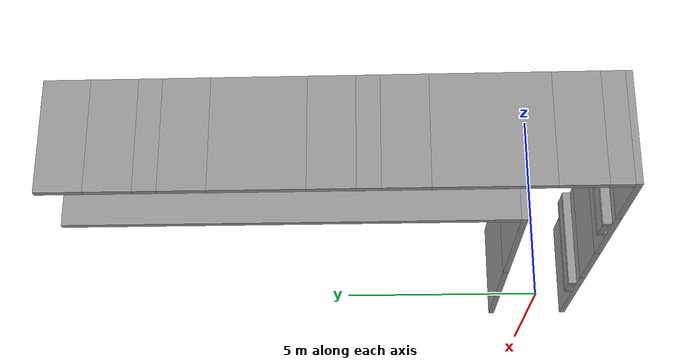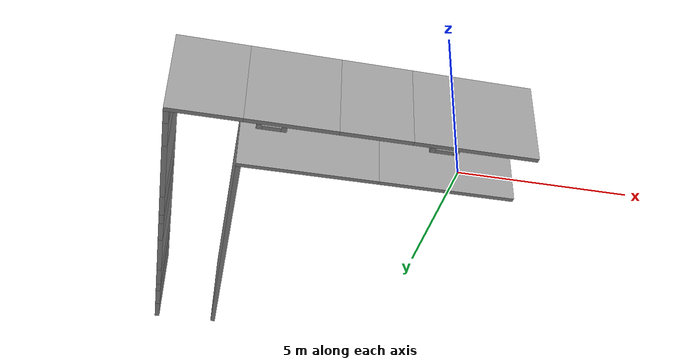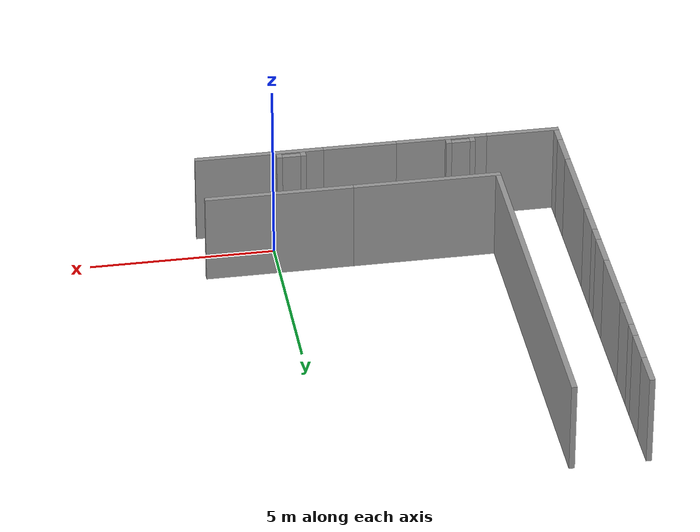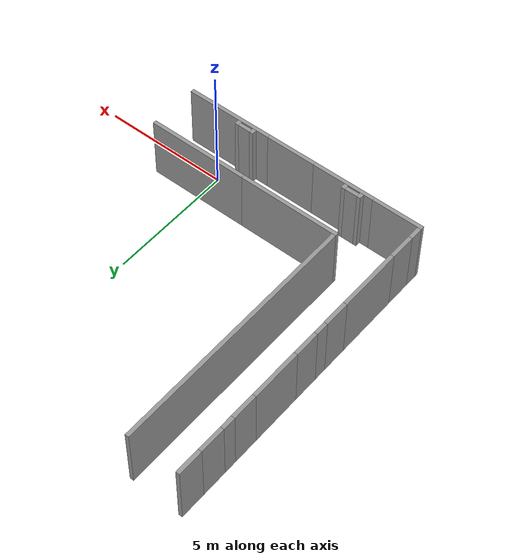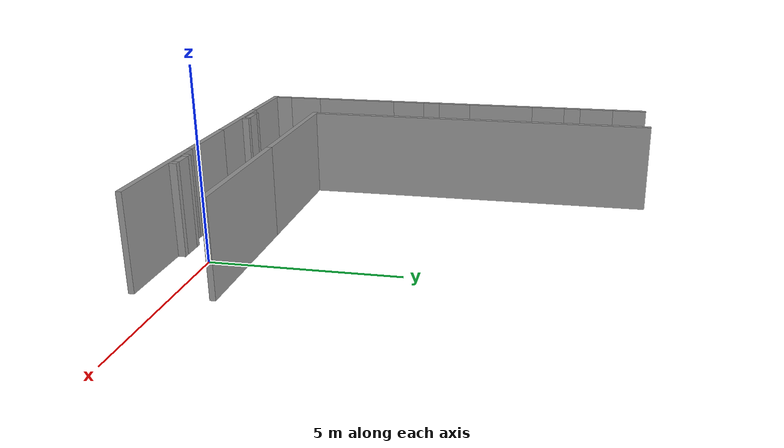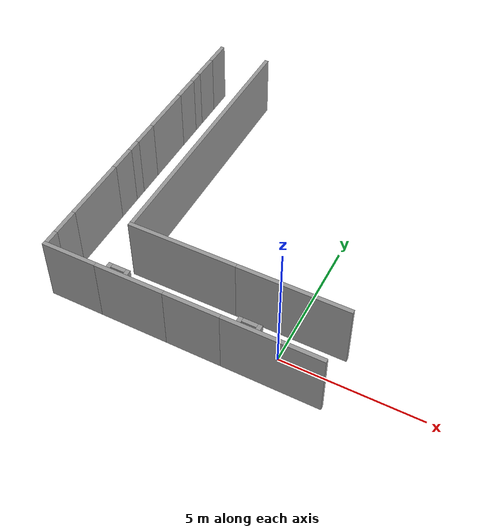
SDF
<?xml version='1.0'?>
<sdf version='1.6'>
  <model name='turtlebot_model_10'>
    <pose frame=''>-3.009 5 0 0 -0 0</pose>
    <link name='Wall_0'>
      <collision name='Wall_0_Collision'>
        <geometry>
          <box>
            <size>4 0.15 2.5</size>
          </box>
        </geometry>
        <pose frame=''>0 0 1.25 0 -0 0</pose>
      </collision>
      <visual name='Wall_0_Visual'>
        <pose frame=''>0 0 1.25 0 -0 0</pose>
        <geometry>
          <box>
            <size>4 0.15 2.5</size>
          </box>
        </geometry>
        <material>
          <script>
            <uri>file://media/materials/scripts/gazebo.material</uri>
            <name>Gazebo/Grey</name>
          </script>
          <ambient>1 1 1 1</ambient>
        </material>
        <meta>
          <layer>0</layer>
        </meta>
      </visual>
      <pose frame=''>2.995 -4 0 0 -0 0</pose>
    </link>
    <link name='Wall_15'>
      <collision name='Wall_15_Collision'>
        <geometry>
          <box>
            <size>2 0.15 2.5</size>
          </box>
        </geometry>
        <pose frame=''>0 0 1.25 0 -0 0</pose>
      </collision>
      <visual name='Wall_15_Visual'>
        <pose frame=''>0 0 1.25 0 -0 0</pose>
        <geometry>
          <box>
            <size>2 0.15 2.5</size>
          </box>
        </geometry>
        <material>
          <script>
            <uri>file://media/materials/scripts/gazebo.material</uri>
            <name>Gazebo/Grey</name>
          </script>
          <ambient>1 1 1 1</ambient>
        </material>
        <meta>
          <layer>0</layer>
        </meta>
      </visual>
      <pose frame=''>-3.995 -6 0 0 -0 0</pose>
    </link>
    <link name='Wall_17'>
      <collision name='Wall_17_Collision'>
        <geometry>
          <box>
            <size>2.49 0.15 2.5</size>
          </box>
        </geometry>
        <pose frame=''>0 0 1.25 0 -0 0</pose>
      </collision>
      <visual name='Wall_17_Visual'>
        <pose frame=''>0 0 1.25 0 -0 0</pose>
        <geometry>
          <box>
            <size>2.49 0.15 2.5</size>
          </box>
        </geometry>
        <material>
          <script>
            <uri>file://media/materials/scripts/gazebo.material</uri>
            <name>Gazebo/Grey</name>
          </script>
          <ambient>1 1 1 1</ambient>
        </material>
        <meta>
          <layer>0</layer>
        </meta>
      </visual>
      <pose frame=''>-1.75 -6 0 0 -0 0</pose>
    </link>
    <link name='Wall_2'>
      <collision name='Wall_2_Collision'>
        <geometry>
          <box>
            <size>4 0.15 2.5</size>
          </box>
        </geometry>
        <pose frame=''>0 0 1.25 0 -0 0</pose>
      </collision>
      <visual name='Wall_2_Visual'>
        <pose frame=''>0 0 1.25 0 -0 0</pose>
        <geometry>
          <box>
            <size>4 0.15 2.5</size>
          </box>
        </geometry>
        <material>
          <script>
            <uri>file://media/materials/scripts/gazebo.material</uri>
            <name>Gazebo/Grey</name>
          </script>
          <ambient>1 1 1 1</ambient>
        </material>
        <meta>
          <layer>0</layer>
        </meta>
      </visual>
      <pose frame=''>-1.005 -4 0 0 -0 3.14159</pose>
    </link>
    <link name='Wall_20'>
      <collision name='Wall_20_Collision'>
        <geometry>
          <box>
            <size>0.5 0.15 2.5</size>
          </box>
        </geometry>
        <pose frame=''>0 0 1.25 0 -0 0</pose>
      </collision>
      <visual name='Wall_20_Visual'>
        <pose frame=''>0 0 1.25 0 -0 0</pose>
        <geometry>
          <box>
            <size>0.5 0.15 2.5</size>
          </box>
        </geometry>
        <material>
          <script>
            <uri>file://media/materials/scripts/gazebo.material</uri>
            <name>Gazebo/Grey</name>
          </script>
          <ambient>1 1 1 1</ambient>
        </material>
        <meta>
          <layer>0</layer>
        </meta>
      </visual>
      <pose frame=''>-4.92 -5.675 0 0 -0 1.5708</pose>
    </link>
    <link name='Wall_22'>
      <collision name='Wall_22_Collision'>
        <geometry>
          <box>
            <size>1 0.15 2.5</size>
          </box>
        </geometry>
        <pose frame=''>0 0 1.25 0 -0 0</pose>
      </collision>
      <visual name='Wall_22_Visual'>
        <pose frame=''>0 0 1.25 0 -0 0</pose>
        <geometry>
          <box>
            <size>1 0.15 2.5</size>
          </box>
        </geometry>
        <material>
          <script>
            <uri>file://media/materials/scripts/gazebo.material</uri>
            <name>Gazebo/Grey</name>
          </script>
          <ambient>1 1 1 1</ambient>
        </material>
        <meta>
          <layer>0</layer>
        </meta>
      </visual>
      <pose frame=''>-4.92 -4.925 0 0 -0 1.5708</pose>
    </link>
    <link name='Wall_24'>
      <collision name='Wall_24_Collision'>
        <geometry>
          <box>
            <size>2.5 0.15 2.5</size>
          </box>
        </geometry>
        <pose frame=''>0 0 1.25 0 -0 0</pose>
      </collision>
      <visual name='Wall_24_Visual'>
        <pose frame=''>0 0 1.25 0 -0 0</pose>
        <geometry>
          <box>
            <size>2.5 0.15 2.5</size>
          </box>
        </geometry>
        <material>
          <script>
            <uri>file://media/materials/scripts/gazebo.material</uri>
            <name>Gazebo/Grey</name>
          </script>
          <ambient>1 1 1 1</ambient>
        </material>
        <meta>
          <layer>0</layer>
        </meta>
      </visual>
      <pose frame=''>-4.92 -3.175 0 0 -0 1.5708</pose>
    </link>
    <link name='Wall_26'>
      <collision name='Wall_26_Collision'>
        <geometry>
          <box>
            <size>1 0.15 2.5</size>
          </box>
        </geometry>
        <pose frame=''>0 0 1.25 0 -0 0</pose>
      </collision>
      <visual name='Wall_26_Visual'>
        <pose frame=''>0 0 1.25 0 -0 0</pose>
        <geometry>
          <box>
            <size>1 0.15 2.5</size>
          </box>
        </geometry>
        <material>
          <script>
            <uri>file://media/materials/scripts/gazebo.material</uri>
            <name>Gazebo/Grey</name>
          </script>
          <ambient>1 1 1 1</ambient>
        </material>
        <meta>
          <layer>0</layer>
        </meta>
      </visual>
      <pose frame=''>-4.92 -1.425 0 0 -0 1.5708</pose>
    </link>
    <link name='Wall_28'>
      <collision name='Wall_28_Collision'>
        <geometry>
          <box>
            <size>0.5 0.15 2.5</size>
          </box>
        </geometry>
        <pose frame=''>0 0 1.25 0 -0 0</pose>
      </collision>
      <visual name='Wall_28_Visual'>
        <pose frame=''>0 0 1.25 0 -0 0</pose>
        <geometry>
          <box>
            <size>0.5 0.15 2.5</size>
          </box>
        </geometry>
        <material>
          <script>
            <uri>file://media/materials/scripts/gazebo.material</uri>
            <name>Gazebo/Grey</name>
          </script>
          <ambient>1 1 1 1</ambient>
        </material>
        <meta>
          <layer>0</layer>
        </meta>
      </visual>
      <pose frame=''>-4.92 -0.675001 0 0 -0 1.5708</pose>
    </link>
    <link name='Wall_30'>
      <collision name='Wall_30_Collision'>
        <geometry>
          <box>
            <size>1 0.15 2.5</size>
          </box>
        </geometry>
        <pose frame=''>0 0 1.25 0 -0 0</pose>
      </collision>
      <visual name='Wall_30_Visual'>
        <pose frame=''>0 0 1.25 0 -0 0</pose>
        <geometry>
          <box>
            <size>1 0.15 2.5</size>
          </box>
        </geometry>
        <material>
          <script>
            <uri>file://media/materials/scripts/gazebo.material</uri>
            <name>Gazebo/Grey</name>
          </script>
          <ambient>1 1 1 1</ambient>
        </material>
        <meta>
          <layer>0</layer>
        </meta>
      </visual>
      <pose frame=''>-4.92 0.074999 0 0 -0 1.5708</pose>
    </link>
    <link name='Wall_32'>
      <collision name='Wall_32_Collision'>
        <geometry>
          <box>
            <size>2 0.15 2.5</size>
          </box>
        </geometry>
        <pose frame=''>0 0 1.25 0 -0 0</pose>
      </collision>
      <visual name='Wall_32_Visual'>
        <pose frame=''>0 0 1.25 0 -0 0</pose>
        <geometry>
          <box>
            <size>2 0.15 2.5</size>
          </box>
        </geometry>
        <material>
          <script>
            <uri>file://media/materials/scripts/gazebo.material</uri>
            <name>Gazebo/Grey</name>
          </script>
          <ambient>1 1 1 1</ambient>
        </material>
        <meta>
          <layer>0</layer>
        </meta>
      </visual>
      <pose frame=''>-4.92 1.575 0 0 -0 1.5708</pose>
    </link>
    <link name='Wall_37'>
      <collision name='Wall_37_Collision'>
        <geometry>
          <box>
            <size>1 0.15 2.5</size>
          </box>
        </geometry>
        <pose frame=''>0 0 1.25 0 -0 0</pose>
      </collision>
      <visual name='Wall_37_Visual'>
        <pose frame=''>0 0 1.25 0 -0 0</pose>
        <geometry>
          <box>
            <size>1 0.15 2.5</size>
          </box>
        </geometry>
        <material>
          <script>
            <uri>file://media/materials/scripts/gazebo.material</uri>
            <name>Gazebo/Grey</name>
          </script>
          <ambient>1 1 1 1</ambient>
        </material>
        <meta>
          <layer>0</layer>
        </meta>
      </visual>
      <pose frame=''>-4.92 3.075 0 0 -0 1.5708</pose>
    </link>
    <link name='Wall_4'>
      <collision name='Wall_4_Collision'>
        <geometry>
          <box>
            <size>10 0.15 2.5</size>
          </box>
        </geometry>
        <pose frame=''>0 0 1.25 0 -0 0</pose>
      </collision>
      <visual name='Wall_4_Visual'>
        <pose frame=''>0 0 1.25 0 -0 0</pose>
        <geometry>
          <box>
            <size>10 0.15 2.5</size>
          </box>
        </geometry>
        <material>
          <script>
            <uri>file://media/materials/scripts/gazebo.material</uri>
            <name>Gazebo/Grey</name>
          </script>
          <ambient>1 1 1 1</ambient>
        </material>
        <meta>
          <layer>0</layer>
        </meta>
      </visual>
      <pose frame=''>-2.93 1.075 0 0 -0 1.5708</pose>
    </link>
    <link name='Wall_40'>
      <collision name='Wall_40_Collision'>
        <geometry>
          <box>
            <size>0.5 0.15 2.5</size>
          </box>
        </geometry>
        <pose frame=''>0 0 1.25 0 -0 0</pose>
      </collision>
      <visual name='Wall_40_Visual'>
        <pose frame=''>0 0 1.25 0 -0 0</pose>
        <geometry>
          <box>
            <size>0.5 0.15 2.5</size>
          </box>
        </geometry>
        <material>
          <script>
            <uri>file://media/materials/scripts/gazebo.material</uri>
            <name>Gazebo/Grey</name>
          </script>
          <ambient>1 1 1 1</ambient>
        </material>
        <meta>
          <layer>0</layer>
        </meta>
      </visual>
      <pose frame=''>-4.92 3.825 0 0 -0 1.5708</pose>
    </link>
    <link name='Wall_42'>
      <collision name='Wall_42_Collision'>
        <geometry>
          <box>
            <size>1 0.15 2.5</size>
          </box>
        </geometry>
        <pose frame=''>0 0 1.25 0 -0 0</pose>
      </collision>
      <visual name='Wall_42_Visual'>
        <pose frame=''>0 0 1.25 0 -0 0</pose>
        <geometry>
          <box>
            <size>1 0.15 2.5</size>
          </box>
        </geometry>
        <material>
          <script>
            <uri>file://media/materials/scripts/gazebo.material</uri>
            <name>Gazebo/Grey</name>
          </script>
          <ambient>1 1 1 1</ambient>
        </material>
        <meta>
          <layer>0</layer>
        </meta>
      </visual>
      <pose frame=''>-4.92 4.575 0 0 -0 1.5708</pose>
    </link>
    <link name='Wall_44'>
      <collision name='Wall_44_Collision'>
        <geometry>
          <box>
            <size>1 0.15 2.5</size>
          </box>
        </geometry>
        <pose frame=''>0 0 1.25 0 -0 0</pose>
      </collision>
      <visual name='Wall_44_Visual'>
        <pose frame=''>0 0 1.25 0 -0 0</pose>
        <geometry>
          <box>
            <size>1 0.15 2.5</size>
          </box>
        </geometry>
        <material>
          <script>
            <uri>file://media/materials/scripts/gazebo.material</uri>
            <name>Gazebo/Grey</name>
          </script>
          <ambient>1 1 1 1</ambient>
        </material>
        <meta>
          <layer>0</layer>
        </meta>
      </visual>
      <pose frame=''>-4.92 5.575 0 0 -0 1.5708</pose>
    </link>
    <link name='Wall_46'>
      <collision name='Wall_46_Collision'>
        <geometry>
          <box>
            <size>0.2 0.15 2.5</size>
          </box>
        </geometry>
        <pose frame=''>0 0 1.25 0 -0 0</pose>
      </collision>
      <visual name='Wall_46_Visual'>
        <pose frame=''>0 0 1.25 0 -0 0</pose>
        <geometry>
          <box>
            <size>0.2 0.15 2.5</size>
          </box>
        </geometry>
        <material>
          <script>
            <uri>file://media/materials/scripts/gazebo.material</uri>
            <name>Gazebo/Grey</name>
          </script>
          <ambient>1 1 1 1</ambient>
        </material>
        <meta>
          <layer>0</layer>
        </meta>
      </visual>
      <pose frame=''>2.07 -5.825 0 0 -0 1.5708</pose>
    </link>
    <link name='Wall_51'>
      <collision name='Wall_51_Collision'>
        <geometry>
          <box>
            <size>0.5 0.15 2.5</size>
          </box>
        </geometry>
        <pose frame=''>0 0 1.25 0 -0 0</pose>
      </collision>
      <visual name='Wall_51_Visual'>
        <pose frame=''>0 0 1.25 0 -0 0</pose>
        <geometry>
          <box>
            <size>0.5 0.15 2.5</size>
          </box>
        </geometry>
        <material>
          <script>
            <uri>file://media/materials/scripts/gazebo.material</uri>
            <name>Gazebo/Grey</name>
          </script>
          <ambient>1 1 1 1</ambient>
        </material>
        <meta>
          <layer>0</layer>
        </meta>
      </visual>
      <pose frame=''>2.395 -5.8 0 0 -0 0</pose>
    </link>
    <link name='Wall_56'>
      <collision name='Wall_56_Collision'>
        <geometry>
          <box>
            <size>0.2 0.15 2.5</size>
          </box>
        </geometry>
        <pose frame=''>0 0 1.25 0 -0 0</pose>
      </collision>
      <visual name='Wall_56_Visual'>
        <pose frame=''>0 0 1.25 0 -0 0</pose>
        <geometry>
          <box>
            <size>0.2 0.15 2.5</size>
          </box>
        </geometry>
        <material>
          <script>
            <uri>file://media/materials/scripts/gazebo.material</uri>
            <name>Gazebo/Grey</name>
          </script>
          <ambient>1 1 1 1</ambient>
        </material>
        <meta>
          <layer>0</layer>
        </meta>
      </visual>
      <pose frame=''>2.72 -5.825 0 0 -0 1.5708</pose>
    </link>
    <link name='Wall_58'>
      <collision name='Wall_58_Collision'>
        <geometry>
          <box>
            <size>0.2 0.15 2.5</size>
          </box>
        </geometry>
        <pose frame=''>0 0 1.25 0 -0 0</pose>
      </collision>
      <visual name='Wall_58_Visual'>
        <pose frame=''>0 0 1.25 0 -0 0</pose>
        <geometry>
          <box>
            <size>0.2 0.15 2.5</size>
          </box>
        </geometry>
        <material>
          <script>
            <uri>file://media/materials/scripts/gazebo.material</uri>
            <name>Gazebo/Grey</name>
          </script>
          <ambient>1 1 1 1</ambient>
        </material>
        <meta>
          <layer>0</layer>
        </meta>
      </visual>
      <pose frame=''>-2.57 -5.825 0 0 -0 1.5708</pose>
    </link>
    <link name='Wall_6'>
      <collision name='Wall_6_Collision'>
        <geometry>
          <box>
            <size>3.5 0.15 2.5</size>
          </box>
        </geometry>
        <pose frame=''>0 0 1.25 0 -0 0</pose>
      </collision>
      <visual name='Wall_6_Visual'>
        <pose frame=''>0 0 1.25 0 -0 0</pose>
        <geometry>
          <box>
            <size>3.5 0.15 2.5</size>
          </box>
        </geometry>
        <material>
          <script>
            <uri>file://media/materials/scripts/gazebo.material</uri>
            <name>Gazebo/Grey</name>
          </script>
          <ambient>1 1 1 1</ambient>
        </material>
        <meta>
          <layer>0</layer>
        </meta>
      </visual>
      <pose frame=''>3.245 -6 0 0 -0 3.14159</pose>
    </link>
    <link name='Wall_61'>
      <collision name='Wall_61_Collision'>
        <geometry>
          <box>
            <size>0.5 0.15 2.5</size>
          </box>
        </geometry>
        <pose frame=''>0 0 1.25 0 -0 0</pose>
      </collision>
      <visual name='Wall_61_Visual'>
        <pose frame=''>0 0 1.25 0 -0 0</pose>
        <geometry>
          <box>
            <size>0.5 0.15 2.5</size>
          </box>
        </geometry>
        <material>
          <script>
            <uri>file://media/materials/scripts/gazebo.material</uri>
            <name>Gazebo/Grey</name>
          </script>
          <ambient>1 1 1 1</ambient>
        </material>
        <meta>
          <layer>0</layer>
        </meta>
      </visual>
      <pose frame=''>-2.245 -5.8 0 0 -0 0</pose>
    </link>
    <link name='Wall_63'>
      <collision name='Wall_63_Collision'>
        <geometry>
          <box>
            <size>0.2 0.15 2.5</size>
          </box>
        </geometry>
        <pose frame=''>0 0 1.25 0 -0 0</pose>
      </collision>
      <visual name='Wall_63_Visual'>
        <pose frame=''>0 0 1.25 0 -0 0</pose>
        <geometry>
          <box>
            <size>0.2 0.15 2.5</size>
          </box>
        </geometry>
        <material>
          <script>
            <uri>file://media/materials/scripts/gazebo.material</uri>
            <name>Gazebo/Grey</name>
          </script>
          <ambient>1 1 1 1</ambient>
        </material>
        <meta>
          <layer>0</layer>
        </meta>
      </visual>
      <pose frame=''>-1.92 -5.825 0 0 -0 1.5708</pose>
    </link>
    <link name='Wall_8'>
      <collision name='Wall_8_Collision'>
        <geometry>
          <box>
            <size>2 0.15 2.5</size>
          </box>
        </geometry>
        <pose frame=''>0 0 1.25 0 -0 0</pose>
      </collision>
      <visual name='Wall_8_Visual'>
        <pose frame=''>0 0 1.25 0 -0 0</pose>
        <geometry>
          <box>
            <size>2 0.15 2.5</size>
          </box>
        </geometry>
        <material>
          <script>
            <uri>file://media/materials/scripts/gazebo.material</uri>
            <name>Gazebo/Grey</name>
          </script>
          <ambient>1 1 1 1</ambient>
        </material>
        <meta>
          <layer>0</layer>
        </meta>
      </visual>
      <pose frame=''>0.495 -6 0 0 -0 3.14159</pose>
    </link>
    <static>1</static>
  </model>
</sdf>
